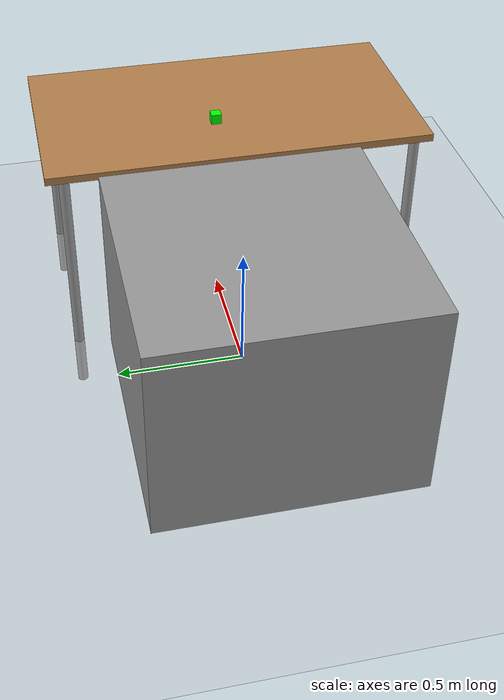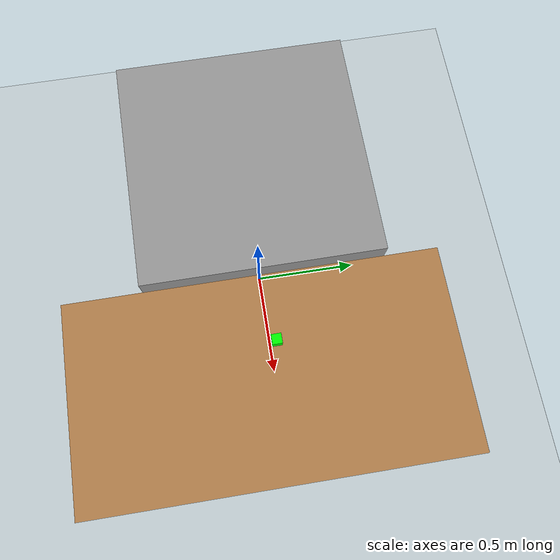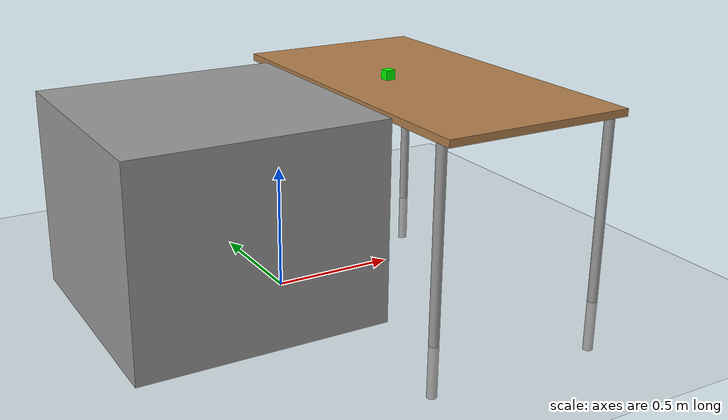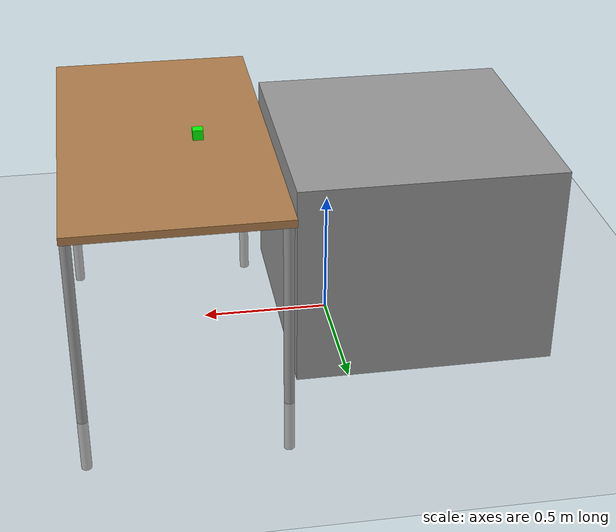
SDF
<sdf version="1.7">
 <world name="default">
  <light name="sun" type="directional">
   <pose>0 0 10 0 -0 0</pose>
   <diffuse>0.8 0.8 0.8 1</diffuse>
   <specular>0.2 0.2 0.2 1</specular>
   <attenuation>
    <range>1000</range>
    <constant>0.9</constant>
    <linear>0.01</linear>
    <quadratic>0.001</quadratic>
   </attenuation>
   <direction>-0.5 0.1 -0.9</direction>
   <spot><inner_angle>0</inner_angle><outer_angle>0</outer_angle><falloff>0</falloff></spot>
  </light>
  <model name="ground_plane">
   <static>1</static>
   <link name="link">
    <collision name="collision">
     <geometry><plane><normal>0 0 1</normal><size>100 100</size></plane></geometry>
     <surface><friction><ode><mu>100</mu><mu2>50</mu2></ode></friction></surface>
    </collision>
    <visual name="visual">
     <cast_shadows>0</cast_shadows>
     <geometry><plane><normal>0 0 1</normal><size>100 100</size></plane></geometry>
     <material>
      <script><uri>file://media/materials/scripts/gazebo.material</uri><name>Gazebo/Grey</name></script>
     </material>
    </visual>
   </link>
  </model>
  <gravity>0 0 -9.8</gravity>
  <magnetic_field>6e-06 2.3e-05 -4.2e-05</magnetic_field>
  <atmosphere type="adiabatic"/>
  <physics type="ode">
   <max_step_size>0.001</max_step_size>
   <real_time_factor>1</real_time_factor>
   <real_time_update_rate>1000</real_time_update_rate>
  </physics>
  <scene><ambient>0.8 0.8 0.8 1</ambient><background>0.7 0.7 0.7 1</background><shadows>1</shadows></scene>
  <audio><device>default</device></audio>
  <spherical_coordinates>
   <surface_model>EARTH_WGS84</surface_model>
   <latitude_deg>0</latitude_deg>
   <longitude_deg>0</longitude_deg>
   <elevation>0</elevation>
   <heading_deg>0</heading_deg>
  </spherical_coordinates>
  <model name="table">
   <static>1</static>
   <link name="link">
    <collision name="surface">
     <pose>0 0 1 0 -0 0</pose>
     <geometry><box><size>1.5 0.8 0.03</size></box></geometry>
     <surface><friction><ode><mu>0.6</mu><mu2>0.6</mu2></ode></friction></surface>
    </collision>
    <visual name="visual1">
     <pose>0 0 1 0 -0 0</pose>
     <geometry><box><size>1.5 0.8 0.03</size></box></geometry>
     <material>
      <script><uri>file://media/materials/scripts/gazebo.material</uri><name>Gazebo/Wood</name></script>
     </material>
    </visual>
    <collision name="front_left_leg">
     <pose>0.68 0.38 0.5 0 -0 0</pose>
     <geometry><cylinder><radius>0.02</radius><length>1</length></cylinder></geometry>
    </collision>
    <visual name="front_left_leg">
     <pose>0.68 0.38 0.5 0 -0 0</pose>
     <geometry><cylinder><radius>0.02</radius><length>1</length></cylinder></geometry>
     <material>
      <script><uri>file://media/materials/scripts/gazebo.material</uri><name>Gazebo/Grey</name></script>
     </material>
    </visual>
    <collision name="front_right_leg">
     <pose>0.68 -0.38 0.5 0 -0 0</pose>
     <geometry><cylinder><radius>0.02</radius><length>1</length></cylinder></geometry>
    </collision>
    <visual name="front_right_leg">
     <pose>0.68 -0.38 0.5 0 -0 0</pose>
     <geometry><cylinder><radius>0.02</radius><length>1</length></cylinder></geometry>
     <material>
      <script><uri>file://media/materials/scripts/gazebo.material</uri><name>Gazebo/Grey</name></script>
     </material>
    </visual>
    <collision name="back_right_leg">
     <pose>-0.68 -0.38 0.5 0 -0 0</pose>
     <geometry><cylinder><radius>0.02</radius><length>1</length></cylinder></geometry>
    </collision>
    <visual name="back_right_leg">
     <pose>-0.68 -0.38 0.5 0 -0 0</pose>
     <geometry><cylinder><radius>0.02</radius><length>1</length></cylinder></geometry>
     <material>
      <script><uri>file://media/materials/scripts/gazebo.material</uri><name>Gazebo/Grey</name></script>
     </material>
    </visual>
    <collision name="back_left_leg">
     <pose>-0.68 0.38 0.5 0 -0 0</pose>
     <geometry><cylinder><radius>0.02</radius><length>1</length></cylinder></geometry>
    </collision>
    <visual name="back_left_leg">
     <pose>-0.68 0.38 0.5 0 -0 0</pose>
     <geometry><cylinder><radius>0.02</radius><length>1</length></cylinder></geometry>
     <material>
      <script><uri>file://media/materials/scripts/gazebo.material</uri><name>Gazebo/Grey</name></script>
     </material>
    </visual>
   </link>
   <pose>0.628743 -0.054706 -0.216115 0 0 -1.57019</pose>
  </model>
  <model name="green_cube">
   <link name="link_2">
    <inertial>
     <mass>1</mass>
     <inertia>
      <ixx>0.166667</ixx>
      <ixy>0</ixy>
      <ixz>0</ixz>
      <iyy>0.166667</iyy>
      <iyz>0</iyz>
      <izz>0.166667</izz>
     </inertia>
    </inertial>
    <visual name="visual">
     <geometry><box><size>0.04 0.04 0.04</size></box></geometry>
     <material>
      <lighting>1</lighting>
      <script><uri>file://media/materials/scripts/gazebo.material</uri><name>Gazebo/Grey</name></script>
      <shader type="pixel"><normal_map>__default__</normal_map></shader>
      <ambient>0 1 0 1</ambient>
      <diffuse>0.7 0.7 0.7 1</diffuse>
      <specular>0.01 0.01 0.01 1</specular>
      <emissive>0 0 0 1</emissive>
     </material>
    </visual>
    <collision name="collision">
     <geometry><box><size>0.04 0.04 0.04</size></box></geometry>
     <surface>
      <friction>
       <ode><mu>1</mu><mu2>1</mu2><fdir1>0 0 0</fdir1><slip1>0</slip1><slip2>0</slip2></ode>
       <torsional>
        <coefficient>1</coefficient>
        <patch_radius>0</patch_radius>
        <surface_radius>0</surface_radius>
        <use_patch_radius>1</use_patch_radius>
        <ode><slip>0</slip></ode>
       </torsional>
      </friction>
      <bounce><restitution_coefficient>0</restitution_coefficient><threshold>1e+06</threshold></bounce>
      <contact>
       <collide_without_contact>0</collide_without_contact>
       <collide_without_contact_bitmask>1</collide_without_contact_bitmask>
       <collide_bitmask>1</collide_bitmask>
       <ode>
        <soft_cfm>0</soft_cfm>
        <soft_erp>0.2</soft_erp>
        <kp>1e+13</kp>
        <kd>1</kd>
        <max_vel>0.01</max_vel>
        <min_depth>0</min_depth>
       </ode>
       <bullet>
        <split_impulse>1</split_impulse>
        <split_impulse_penetration_threshold>-0.01</split_impulse_penetration_threshold>
        <soft_cfm>0</soft_cfm>
        <soft_erp>0.2</soft_erp>
        <kp>1e+13</kp>
        <kd>1</kd>
       </bullet>
      </contact>
     </surface>
    </collision>
    <sensor name="box_contact" type="contact">
     <contact><collision>collision</collision><topic>__default_topic__</topic></contact>
    </sensor>
   </link>
   <static>0</static>
   <pose>0.500003 -0 0.818888 1.6e-05 0.000111 0.000685</pose>
  </model>
  <plugin name="gazebo_link_attacher" filename="libgazebo_link_attacher.so"/>
  <plugin name="gazebo_ros_init" filename="libgazebo_ros_init.so"/>
  <plugin name="gazebo_ros_factory" filename="libgazebo_ros_factory.so"/>
  <model name="robot_base">
   <link name="link_0">
    <inertial>
     <mass>1</mass>
     <inertia>
      <ixx>0.166667</ixx>
      <ixy>0</ixy>
      <ixz>0</ixz>
      <iyy>0.166667</iyy>
      <iyz>0</iyz>
      <izz>0.166667</izz>
     </inertia>
    </inertial>
    <visual name="visual">
     <geometry><box><size>1 1 0.8</size></box></geometry>
     <material>
      <lighting>1</lighting>
      <script><uri>file://media/materials/scripts/gazebo.material</uri><name>Gazebo/Grey</name></script>
      <shader type="pixel"><normal_map>__default__</normal_map></shader>
      <ambient>0.3 0.3 0.3 1</ambient>
      <diffuse>0.7 0.7 0.7 1</diffuse>
      <specular>0.01 0.01 0.01 1</specular>
      <emissive>0 0 0 1</emissive>
     </material>
    </visual>
    <collision name="collision">
     <geometry><box><size>1 1 0.8</size></box></geometry>
     <surface>
      <friction>
       <ode><mu>1</mu><mu2>1</mu2><fdir1>0 0 0</fdir1><slip1>0</slip1><slip2>0</slip2></ode>
       <torsional>
        <coefficient>1</coefficient>
        <patch_radius>0</patch_radius>
        <surface_radius>0</surface_radius>
        <use_patch_radius>1</use_patch_radius>
        <ode><slip>0</slip></ode>
       </torsional>
      </friction>
      <bounce><restitution_coefficient>0</restitution_coefficient><threshold>1e+06</threshold></bounce>
      <contact>
       <collide_without_contact>0</collide_without_contact>
       <collide_without_contact_bitmask>1</collide_without_contact_bitmask>
       <collide_bitmask>1</collide_bitmask>
       <ode>
        <soft_cfm>0</soft_cfm>
        <soft_erp>0.2</soft_erp>
        <kp>1e+13</kp>
        <kd>1</kd>
        <max_vel>0.01</max_vel>
        <min_depth>0</min_depth>
       </ode>
       <bullet>
        <split_impulse>1</split_impulse>
        <split_impulse_penetration_threshold>-0.01</split_impulse_penetration_threshold>
        <soft_cfm>0</soft_cfm>
        <soft_erp>0.2</soft_erp>
        <kp>1e+13</kp>
        <kd>1</kd>
       </bullet>
      </contact>
     </surface>
    </collision>
   </link>
   <static>0</static>
   <pose>-0.3 0 0.4 0 -0 0</pose>
  </model>
 </world>
</sdf>
